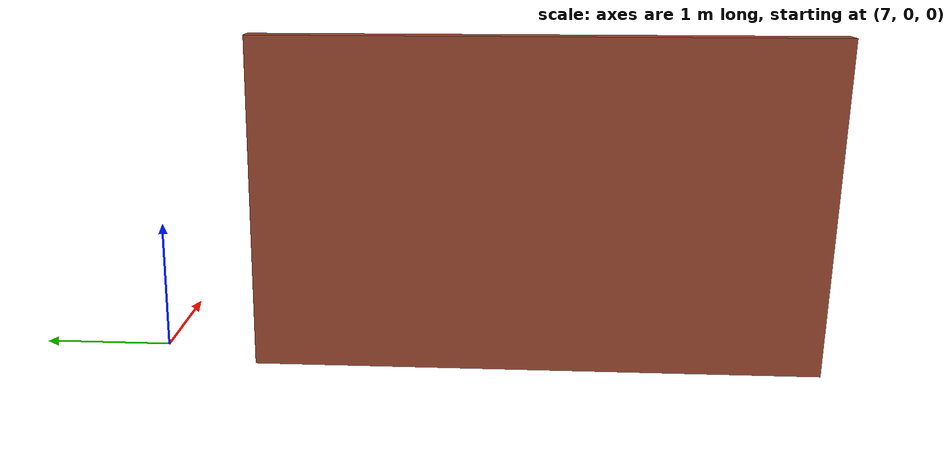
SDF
<?xml version='1.0'?>
<sdf version='1.5'>
  <model name='worlds'>
    <pose frame=''>6.73939 -2.89316 0 0 -0 0</pose>
    <link name='Wall_0'>
      <collision name='Wall_0_Collision'>
        <geometry>
          <box>
            <size>4.25 0.15 2.5</size>
          </box>
        </geometry>
        <pose frame=''>0 0 1.25 0 -0 0</pose>
      </collision>
      <visual name='Wall_0_Visual'>
        <pose frame=''>0 0 1.25 0 -0 0</pose>
        <geometry>
          <box>
            <size>4.25 0.15 2.5</size>
          </box>
        </geometry>
        <material>
          <script>
            <uri>file://media/materials/scripts/gazebo.material</uri>
            <name>Gazebo/Bricks</name>
          </script>
          <ambient>1 1 1 1</ambient>
        </material>
      </visual>
      <pose frame=''>0 -0 0 0 -0 1.5708</pose>
    </link>
    <static>1</static>
  </model>
</sdf>
